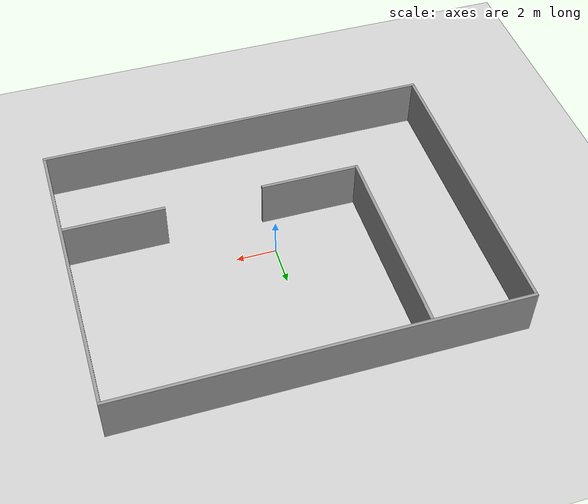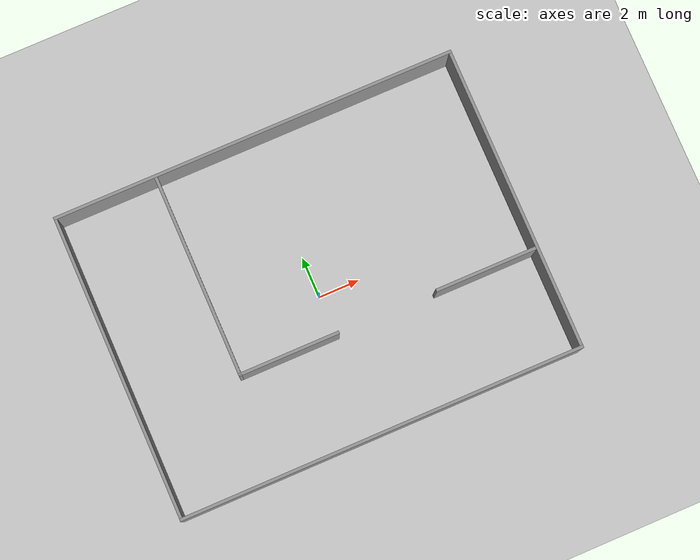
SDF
<sdf version="1.6">
 <world name="default">
  <light name="sun" type="directional">
   <pose>0 0 10 0 -0 0</pose>
   <diffuse>0.8 0.8 0.8 1</diffuse>
   <specular>0.2 0.2 0.2 1</specular>
   <attenuation>
    <range>1000</range>
    <constant>0.9</constant>
    <linear>0.01</linear>
    <quadratic>0.001</quadratic>
   </attenuation>
   <direction>-0.5 0.1 -0.9</direction>
  </light>
  <model name="ground_plane">
   <static>1</static>
   <link name="link">
    <collision name="collision">
     <geometry><plane><normal>0 0 1</normal><size>100 100</size></plane></geometry>
     <surface>
      <contact><collide_bitmask>65535</collide_bitmask></contact>
      <friction><ode><mu>100</mu><mu2>50</mu2></ode></friction>
     </surface>
    </collision>
    <visual name="visual">
     <cast_shadows>0</cast_shadows>
     <geometry><plane><normal>0 0 1</normal><size>100 100</size></plane></geometry>
     <material>
      <script><uri>file://media/materials/scripts/gazebo.material</uri><name>Gazebo/Grey</name></script>
     </material>
    </visual>
   </link>
  </model>
  <gravity>0 0 -9.8</gravity>
  <magnetic_field>6e-06 2.3e-05 -4.2e-05</magnetic_field>
  <atmosphere type="adiabatic"/>
  <physics name="default_physics" default="0" type="ode">
   <max_step_size>0.001</max_step_size>
   <real_time_factor>1</real_time_factor>
   <real_time_update_rate>1000</real_time_update_rate>
  </physics>
  <scene><ambient>0.4 0.4 0.4 1</ambient><background>0.7 0.7 0.7 1</background><shadows>1</shadows></scene>
  <audio><device>default</device></audio>
  <spherical_coordinates>
   <surface_model>EARTH_WGS84</surface_model>
   <latitude_deg>0</latitude_deg>
   <longitude_deg>0</longitude_deg>
   <elevation>0</elevation>
   <heading_deg>0</heading_deg>
  </spherical_coordinates>
  <model name="Proj1Room">
   <pose>0.075 0.397301 0 0 -0 0</pose>
   <link name="Wall_12">
    <collision name="Wall_12_Collision">
     <geometry><box><size>10 0.15 2.5</size></box></geometry>
     <pose>0 0 1.25 0 -0 0</pose>
    </collision>
    <visual name="Wall_12_Visual">
     <pose>0 0 1.25 0 -0 0</pose>
     <geometry><box><size>10 0.15 2.5</size></box></geometry>
     <material>
      <script><uri>file://media/materials/scripts/gazebo.material</uri><name>Gazebo/Grey</name></script>
      <ambient>1 1 1 1</ambient>
     </material>
     <meta><layer>0</layer></meta>
    </visual>
    <pose>-4.925 2.425 0 0 -0 1.5708</pose>
   </link>
   <link name="Wall_14">
    <collision name="Wall_14_Collision">
     <geometry><box><size>14.85 0.15 2.5</size></box></geometry>
     <pose>0 0 1.25 0 -0 0</pose>
    </collision>
    <visual name="Wall_14_Visual">
     <pose>0 0 1.25 0 -0 0</pose>
     <geometry><box><size>14.85 0.15 2.5</size></box></geometry>
     <material>
      <script><uri>file://media/materials/scripts/gazebo.material</uri><name>Gazebo/Grey</name></script>
      <ambient>1 1 1 1</ambient>
     </material>
     <meta><layer>0</layer></meta>
    </visual>
    <pose>-9.925 0 0 0 -0 -1.5708</pose>
   </link>
   <link name="Wall_16">
    <collision name="Wall_16_Collision">
     <geometry><box><size>14.85 0.15 2.5</size></box></geometry>
     <pose>0 0 1.25 0 -0 0</pose>
    </collision>
    <visual name="Wall_16_Visual">
     <pose>0 0 1.25 0 -0 0</pose>
     <geometry><box><size>14.85 0.15 2.5</size></box></geometry>
     <material>
      <script><uri>file://media/materials/scripts/gazebo.material</uri><name>Gazebo/Grey</name></script>
      <ambient>1 1 1 1</ambient>
     </material>
     <meta><layer>0</layer></meta>
    </visual>
    <pose>9.925 0 0 0 -0 1.5708</pose>
   </link>
   <link name="Wall_2">
    <collision name="Wall_2_Collision">
     <geometry><box><size>20 0.15 2.5</size></box></geometry>
     <pose>0 0 1.25 0 -0 0</pose>
    </collision>
    <visual name="Wall_2_Visual">
     <pose>0 0 1.25 0 -0 0</pose>
     <geometry><box><size>20 0.15 2.5</size></box></geometry>
     <material>
      <script><uri>file://media/materials/scripts/gazebo.material</uri><name>Gazebo/Grey</name></script>
      <ambient>1 1 1 1</ambient>
     </material>
     <meta><layer>0</layer></meta>
    </visual>
    <pose>0 7.5 0 0 -0 3.14159</pose>
   </link>
   <link name="Wall_4">
    <collision name="Wall_4_Collision">
     <geometry><box><size>20 0.15 2.5</size></box></geometry>
     <pose>0 0 1.25 0 -0 0</pose>
    </collision>
    <visual name="Wall_4_Visual">
     <pose>0 0 1.25 0 -0 0</pose>
     <geometry><box><size>20 0.15 2.5</size></box></geometry>
     <material>
      <script><uri>file://media/materials/scripts/gazebo.material</uri><name>Gazebo/Grey</name></script>
      <ambient>1 1 1 1</ambient>
     </material>
     <meta><layer>0</layer></meta>
    </visual>
    <pose>0 -7.5 0 0 -0 3.14159</pose>
   </link>
   <link name="Wall_6">
    <collision name="Wall_6_Collision">
     <geometry><box><size>5.15 0.15 2.5</size></box></geometry>
     <pose>0 0 1.25 0 -0 0</pose>
    </collision>
    <visual name="Wall_6_Visual">
     <pose>0 0 1.25 0 -0 0</pose>
     <geometry><box><size>5.15 0.15 2.5</size></box></geometry>
     <material>
      <script><uri>file://media/materials/scripts/gazebo.material</uri><name>Gazebo/Grey</name></script>
      <ambient>1 1 1 1</ambient>
     </material>
     <meta><layer>0</layer></meta>
    </visual>
    <pose>7.425 -2.5 0 0 -0 3.14159</pose>
   </link>
   <link name="Wall_8">
    <collision name="Wall_8_Collision">
     <geometry><box><size>5 0.15 2.5</size></box></geometry>
     <pose>0 0 1.25 0 -0 0</pose>
    </collision>
    <visual name="Wall_8_Visual">
     <pose>0 0 1.25 0 -0 0</pose>
     <geometry><box><size>5 0.15 2.5</size></box></geometry>
     <material>
      <script><uri>file://media/materials/scripts/gazebo.material</uri><name>Gazebo/Grey</name></script>
      <ambient>1 1 1 1</ambient>
     </material>
     <meta><layer>0</layer></meta>
    </visual>
    <pose>-2.5 -2.5 0 0 -0 3.14159</pose>
   </link>
   <static>1</static>
  </model>
 </world>
</sdf>
